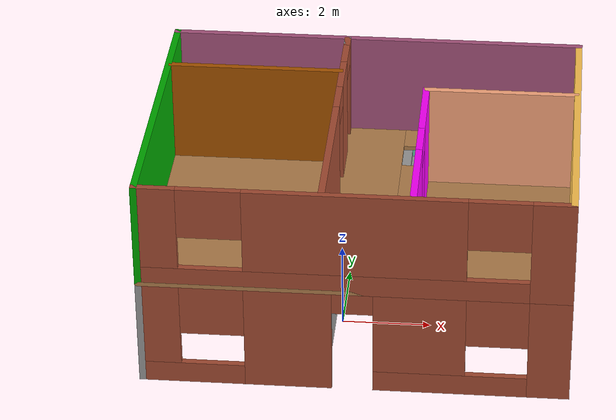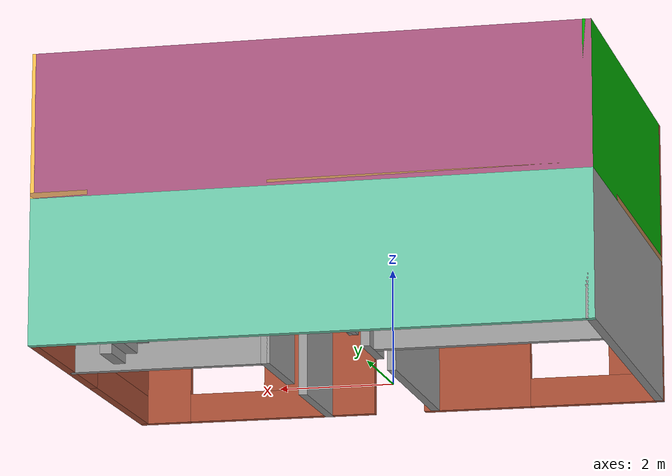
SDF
<?xml version='1.0'?>
<sdf version='1.7'>
  <model name='flat_model2'>
    <pose>0.451757 0.919793 0 0 -0 0</pose>
    <link name='Floor_0'>
      <pose>-0 0 2.5 0 -0 0</pose>
      <visual name='Floor_0_Visual_0'>
        <pose>-2.02969 0 0.05 0 -0 0</pose>
        <geometry>
          <box>
            <size>5.44063 7 0.1</size>
          </box>
        </geometry>
        <material>
          <script>
            <uri>file://media/materials/scripts/gazebo.material</uri>
            <name>Gazebo/Wood</name>
          </script>
          <ambient>1 1 1 1</ambient>
        </material>
        <meta>
          <layer>1</layer>
        </meta>
      </visual>
      <collision name='Floor_0_Collision_0'>
        <geometry>
          <box>
            <size>5.44063 7 0.1</size>
          </box>
        </geometry>
        <pose>-2.02969 0 0.05 0 -0 0</pose>
      </collision>
      <visual name='Floor_0_Visual_1'>
        <pose>2.72031 -0.867123 0.05 0 -0 0</pose>
        <geometry>
          <box>
            <size>4.05937 5.26575 0.1</size>
          </box>
        </geometry>
        <material>
          <script>
            <uri>file://media/materials/scripts/gazebo.material</uri>
            <name>Gazebo/Wood</name>
          </script>
          <ambient>1 1 1 1</ambient>
        </material>
        <meta>
          <layer>1</layer>
        </meta>
      </visual>
      <collision name='Floor_0_Collision_1'>
        <geometry>
          <box>
            <size>4.05937 5.26575 0.1</size>
          </box>
        </geometry>
        <pose>2.72031 -0.867123 0.05 0 -0 0</pose>
      </collision>
      <visual name='Floor_0_Visual_2'>
        <pose>4.25859 2.63288 0.05 0 -0 0</pose>
        <geometry>
          <box>
            <size>0.982812 1.73425 0.1</size>
          </box>
        </geometry>
        <material>
          <script>
            <uri>file://media/materials/scripts/gazebo.material</uri>
            <name>Gazebo/Wood</name>
          </script>
          <ambient>1 1 1 1</ambient>
        </material>
        <meta>
          <layer>1</layer>
        </meta>
      </visual>
      <collision name='Floor_0_Collision_2'>
        <geometry>
          <box>
            <size>0.982812 1.73425 0.1</size>
          </box>
        </geometry>
        <pose>4.25859 2.63288 0.05 0 -0 0</pose>
      </collision>
      <visual name='Floor_0_Visual_3'>
        <pose>2.22891 3.05726 0.05 0 -0 0</pose>
        <geometry>
          <box>
            <size>3.07656 0.885475 0.1</size>
          </box>
        </geometry>
        <material>
          <script>
            <uri>file://media/materials/scripts/gazebo.material</uri>
            <name>Gazebo/Wood</name>
          </script>
          <ambient>1 1 1 1</ambient>
        </material>
        <meta>
          <layer>1</layer>
        </meta>
      </visual>
      <collision name='Floor_0_Collision_3'>
        <geometry>
          <box>
            <size>3.07656 0.885475 0.1</size>
          </box>
        </geometry>
        <pose>2.22891 3.05726 0.05 0 -0 0</pose>
      </collision>
    </link>
    <link name='Stairs_0'>
      <visual name='Stairs_0_Visual_0'>
        <pose>3.66464 2.19014 0.083333 0 -0 -1.5708</pose>
        <geometry>
          <box>
            <size>0.848771 0.205104 0.166667</size>
          </box>
        </geometry>
        <material>
          <script>
            <uri>file://media/materials/scripts/gazebo.material</uri>
            <name>Gazebo/Grey</name>
          </script>
          <ambient>1 1 1 1</ambient>
        </material>
        <meta>
          <layer>0</layer>
        </meta>
      </visual>
      <collision name='Stairs_0_Collision_0'>
        <geometry>
          <box>
            <size>0.848771 0.205104 0.166667</size>
          </box>
        </geometry>
        <pose>3.66464 2.19014 0.083333 0 -0 -1.5708</pose>
      </collision>
      <visual name='Stairs_0_Visual_1'>
        <pose>3.45953 2.19014 0.25 0 -0 -1.5708</pose>
        <geometry>
          <box>
            <size>0.848771 0.205104 0.166667</size>
          </box>
        </geometry>
        <material>
          <script>
            <uri>file://media/materials/scripts/gazebo.material</uri>
            <name>Gazebo/Grey</name>
          </script>
          <ambient>1 1 1 1</ambient>
        </material>
        <meta>
          <layer>0</layer>
        </meta>
      </visual>
      <collision name='Stairs_0_Collision_1'>
        <geometry>
          <box>
            <size>0.848771 0.205104 0.166667</size>
          </box>
        </geometry>
        <pose>3.45953 2.19014 0.25 0 -0 -1.5708</pose>
      </collision>
      <visual name='Stairs_0_Visual_2'>
        <pose>3.25443 2.19014 0.416667 0 -0 -1.5708</pose>
        <geometry>
          <box>
            <size>0.848771 0.205104 0.166667</size>
          </box>
        </geometry>
        <material>
          <script>
            <uri>file://media/materials/scripts/gazebo.material</uri>
            <name>Gazebo/Grey</name>
          </script>
          <ambient>1 1 1 1</ambient>
        </material>
        <meta>
          <layer>0</layer>
        </meta>
      </visual>
      <collision name='Stairs_0_Collision_2'>
        <geometry>
          <box>
            <size>0.848771 0.205104 0.166667</size>
          </box>
        </geometry>
        <pose>3.25443 2.19014 0.416667 0 -0 -1.5708</pose>
      </collision>
      <visual name='Stairs_0_Visual_3'>
        <pose>3.04932 2.19014 0.583333 0 -0 -1.5708</pose>
        <geometry>
          <box>
            <size>0.848771 0.205104 0.166667</size>
          </box>
        </geometry>
        <material>
          <script>
            <uri>file://media/materials/scripts/gazebo.material</uri>
            <name>Gazebo/Grey</name>
          </script>
          <ambient>1 1 1 1</ambient>
        </material>
        <meta>
          <layer>0</layer>
        </meta>
      </visual>
      <collision name='Stairs_0_Collision_3'>
        <geometry>
          <box>
            <size>0.848771 0.205104 0.166667</size>
          </box>
        </geometry>
        <pose>3.04932 2.19014 0.583333 0 -0 -1.5708</pose>
      </collision>
      <visual name='Stairs_0_Visual_4'>
        <pose>2.84422 2.19014 0.75 0 -0 -1.5708</pose>
        <geometry>
          <box>
            <size>0.848771 0.205104 0.166667</size>
          </box>
        </geometry>
        <material>
          <script>
            <uri>file://media/materials/scripts/gazebo.material</uri>
            <name>Gazebo/Grey</name>
          </script>
          <ambient>1 1 1 1</ambient>
        </material>
        <meta>
          <layer>0</layer>
        </meta>
      </visual>
      <collision name='Stairs_0_Collision_4'>
        <geometry>
          <box>
            <size>0.848771 0.205104 0.166667</size>
          </box>
        </geometry>
        <pose>2.84422 2.19014 0.75 0 -0 -1.5708</pose>
      </collision>
      <visual name='Stairs_0_Visual_5'>
        <pose>2.63912 2.19014 0.916667 0 -0 -1.5708</pose>
        <geometry>
          <box>
            <size>0.848771 0.205104 0.166667</size>
          </box>
        </geometry>
        <material>
          <script>
            <uri>file://media/materials/scripts/gazebo.material</uri>
            <name>Gazebo/Grey</name>
          </script>
          <ambient>1 1 1 1</ambient>
        </material>
        <meta>
          <layer>0</layer>
        </meta>
      </visual>
      <collision name='Stairs_0_Collision_5'>
        <geometry>
          <box>
            <size>0.848771 0.205104 0.166667</size>
          </box>
        </geometry>
        <pose>2.63912 2.19014 0.916667 0 -0 -1.5708</pose>
      </collision>
      <visual name='Stairs_0_Visual_6'>
        <pose>2.43401 2.19014 1.08333 0 -0 -1.5708</pose>
        <geometry>
          <box>
            <size>0.848771 0.205104 0.166667</size>
          </box>
        </geometry>
        <material>
          <script>
            <uri>file://media/materials/scripts/gazebo.material</uri>
            <name>Gazebo/Grey</name>
          </script>
          <ambient>1 1 1 1</ambient>
        </material>
        <meta>
          <layer>0</layer>
        </meta>
      </visual>
      <collision name='Stairs_0_Collision_6'>
        <geometry>
          <box>
            <size>0.848771 0.205104 0.166667</size>
          </box>
        </geometry>
        <pose>2.43401 2.19014 1.08333 0 -0 -1.5708</pose>
      </collision>
      <visual name='Stairs_0_Visual_7'>
        <pose>2.22891 2.19014 1.25 0 -0 -1.5708</pose>
        <geometry>
          <box>
            <size>0.848771 0.205104 0.166667</size>
          </box>
        </geometry>
        <material>
          <script>
            <uri>file://media/materials/scripts/gazebo.material</uri>
            <name>Gazebo/Grey</name>
          </script>
          <ambient>1 1 1 1</ambient>
        </material>
        <meta>
          <layer>0</layer>
        </meta>
      </visual>
      <collision name='Stairs_0_Collision_7'>
        <geometry>
          <box>
            <size>0.848771 0.205104 0.166667</size>
          </box>
        </geometry>
        <pose>2.22891 2.19014 1.25 0 -0 -1.5708</pose>
      </collision>
      <visual name='Stairs_0_Visual_8'>
        <pose>2.0238 2.19014 1.41667 0 -0 -1.5708</pose>
        <geometry>
          <box>
            <size>0.848771 0.205104 0.166667</size>
          </box>
        </geometry>
        <material>
          <script>
            <uri>file://media/materials/scripts/gazebo.material</uri>
            <name>Gazebo/Grey</name>
          </script>
          <ambient>1 1 1 1</ambient>
        </material>
        <meta>
          <layer>0</layer>
        </meta>
      </visual>
      <collision name='Stairs_0_Collision_8'>
        <geometry>
          <box>
            <size>0.848771 0.205104 0.166667</size>
          </box>
        </geometry>
        <pose>2.0238 2.19014 1.41667 0 -0 -1.5708</pose>
      </collision>
      <visual name='Stairs_0_Visual_9'>
        <pose>1.8187 2.19014 1.58333 0 -0 -1.5708</pose>
        <geometry>
          <box>
            <size>0.848771 0.205104 0.166667</size>
          </box>
        </geometry>
        <material>
          <script>
            <uri>file://media/materials/scripts/gazebo.material</uri>
            <name>Gazebo/Grey</name>
          </script>
          <ambient>1 1 1 1</ambient>
        </material>
        <meta>
          <layer>0</layer>
        </meta>
      </visual>
      <collision name='Stairs_0_Collision_9'>
        <geometry>
          <box>
            <size>0.848771 0.205104 0.166667</size>
          </box>
        </geometry>
        <pose>1.8187 2.19014 1.58333 0 -0 -1.5708</pose>
      </collision>
      <visual name='Stairs_0_Visual_10'>
        <pose>1.6136 2.19014 1.75 0 -0 -1.5708</pose>
        <geometry>
          <box>
            <size>0.848771 0.205104 0.166667</size>
          </box>
        </geometry>
        <material>
          <script>
            <uri>file://media/materials/scripts/gazebo.material</uri>
            <name>Gazebo/Grey</name>
          </script>
          <ambient>1 1 1 1</ambient>
        </material>
        <meta>
          <layer>0</layer>
        </meta>
      </visual>
      <collision name='Stairs_0_Collision_10'>
        <geometry>
          <box>
            <size>0.848771 0.205104 0.166667</size>
          </box>
        </geometry>
        <pose>1.6136 2.19014 1.75 0 -0 -1.5708</pose>
      </collision>
      <visual name='Stairs_0_Visual_11'>
        <pose>1.40849 2.19014 1.91667 0 -0 -1.5708</pose>
        <geometry>
          <box>
            <size>0.848771 0.205104 0.166667</size>
          </box>
        </geometry>
        <material>
          <script>
            <uri>file://media/materials/scripts/gazebo.material</uri>
            <name>Gazebo/Grey</name>
          </script>
          <ambient>1 1 1 1</ambient>
        </material>
        <meta>
          <layer>0</layer>
        </meta>
      </visual>
      <collision name='Stairs_0_Collision_11'>
        <geometry>
          <box>
            <size>0.848771 0.205104 0.166667</size>
          </box>
        </geometry>
        <pose>1.40849 2.19014 1.91667 0 -0 -1.5708</pose>
      </collision>
      <visual name='Stairs_0_Visual_12'>
        <pose>1.20339 2.19014 2.08333 0 -0 -1.5708</pose>
        <geometry>
          <box>
            <size>0.848771 0.205104 0.166667</size>
          </box>
        </geometry>
        <material>
          <script>
            <uri>file://media/materials/scripts/gazebo.material</uri>
            <name>Gazebo/Grey</name>
          </script>
          <ambient>1 1 1 1</ambient>
        </material>
        <meta>
          <layer>0</layer>
        </meta>
      </visual>
      <collision name='Stairs_0_Collision_12'>
        <geometry>
          <box>
            <size>0.848771 0.205104 0.166667</size>
          </box>
        </geometry>
        <pose>1.20339 2.19014 2.08333 0 -0 -1.5708</pose>
      </collision>
      <visual name='Stairs_0_Visual_13'>
        <pose>0.998284 2.19014 2.25 0 -0 -1.5708</pose>
        <geometry>
          <box>
            <size>0.848771 0.205104 0.166667</size>
          </box>
        </geometry>
        <material>
          <script>
            <uri>file://media/materials/scripts/gazebo.material</uri>
            <name>Gazebo/Grey</name>
          </script>
          <ambient>1 1 1 1</ambient>
        </material>
        <meta>
          <layer>0</layer>
        </meta>
      </visual>
      <collision name='Stairs_0_Collision_13'>
        <geometry>
          <box>
            <size>0.848771 0.205104 0.166667</size>
          </box>
        </geometry>
        <pose>0.998284 2.19014 2.25 0 -0 -1.5708</pose>
      </collision>
      <visual name='Stairs_0_Visual_14'>
        <pose>0.79318 2.19014 2.41667 0 -0 -1.5708</pose>
        <geometry>
          <box>
            <size>0.848771 0.205104 0.166667</size>
          </box>
        </geometry>
        <material>
          <script>
            <uri>file://media/materials/scripts/gazebo.material</uri>
            <name>Gazebo/Grey</name>
          </script>
          <ambient>1 1 1 1</ambient>
        </material>
        <meta>
          <layer>0</layer>
        </meta>
      </visual>
      <collision name='Stairs_0_Collision_14'>
        <geometry>
          <box>
            <size>0.848771 0.205104 0.166667</size>
          </box>
        </geometry>
        <pose>0.79318 2.19014 2.41667 0 -0 -1.5708</pose>
      </collision>
    </link>
    <link name='Wall_0'>
      <collision name='Wall_0_Collision'>
        <geometry>
          <box>
            <size>9.5 0.15 2.5</size>
          </box>
        </geometry>
        <pose>0 0 1.25 0 -0 0</pose>
      </collision>
      <visual name='Wall_0_Visual'>
        <pose>0 0 1.25 0 -0 0</pose>
        <geometry>
          <box>
            <size>9.5 0.15 2.5</size>
          </box>
        </geometry>
        <material>
          <script>
            <uri>file://media/materials/scripts/gazebo.material</uri>
            <name>Gazebo/Grey</name>
          </script>
          <ambient>0.435294 0.796078 0.67451 1</ambient>
        </material>
        <meta>
          <layer>0</layer>
        </meta>
      </visual>
      <pose>-0 3.425 0 0 -0 0</pose>
    </link>
    <link name='Wall_1'>
      <pose>4.675 0 0 0 -0 -1.5708</pose>
      <visual name='Wall_1_Visual_0'>
        <pose>-1.69913 0 1.25 0 -0 0</pose>
        <geometry>
          <box>
            <size>3.60173 0.15 2.5</size>
          </box>
        </geometry>
        <material>
          <script>
            <uri>file://media/materials/scripts/gazebo.material</uri>
            <name>Gazebo/Bricks</name>
          </script>
          <ambient>0.996078 0.47451 0.0196078 1</ambient>
        </material>
        <meta>
          <layer>0</layer>
        </meta>
      </visual>
      <collision name='Wall_1_Collision_0'>
        <geometry>
          <box>
            <size>3.60173 0.15 2.5</size>
          </box>
        </geometry>
        <pose>-1.69913 0 1.25 0 -0 0</pose>
      </collision>
      <visual name='Wall_1_Visual_1'>
        <pose>1.80087 0 0.25 0 -0 0</pose>
        <geometry>
          <box>
            <size>3.39827 0.15 0.5</size>
          </box>
        </geometry>
        <material>
          <script>
            <uri>file://media/materials/scripts/gazebo.material</uri>
            <name>Gazebo/Bricks</name>
          </script>
          <ambient>0.996078 0.47451 0.0196078 1</ambient>
        </material>
        <meta>
          <layer>0</layer>
        </meta>
      </visual>
      <collision name='Wall_1_Collision_1'>
        <geometry>
          <box>
            <size>3.39827 0.15 0.5</size>
          </box>
        </geometry>
        <pose>1.80087 0 0.25 0 -0 0</pose>
      </collision>
      <visual name='Wall_1_Visual_2'>
        <pose>2.2916 0 1.5 0 -0 0</pose>
        <geometry>
          <box>
            <size>2.41679 0.15 2</size>
          </box>
        </geometry>
        <material>
          <script>
            <uri>file://media/materials/scripts/gazebo.material</uri>
            <name>Gazebo/Bricks</name>
          </script>
          <ambient>0.996078 0.47451 0.0196078 1</ambient>
        </material>
        <meta>
          <layer>0</layer>
        </meta>
      </visual>
      <collision name='Wall_1_Collision_2'>
        <geometry>
          <box>
            <size>2.41679 0.15 2</size>
          </box>
        </geometry>
        <pose>2.2916 0 1.5 0 -0 0</pose>
      </collision>
      <visual name='Wall_1_Visual_3'>
        <pose>0.592469 0 1.9 0 -0 0</pose>
        <geometry>
          <box>
            <size>0.981474 0.15 1.2</size>
          </box>
        </geometry>
        <material>
          <script>
            <uri>file://media/materials/scripts/gazebo.material</uri>
            <name>Gazebo/Bricks</name>
          </script>
          <ambient>0.996078 0.47451 0.0196078 1</ambient>
        </material>
        <meta>
          <layer>0</layer>
        </meta>
      </visual>
      <collision name='Wall_1_Collision_3'>
        <geometry>
          <box>
            <size>0.981474 0.15 1.2</size>
          </box>
        </geometry>
        <pose>0.592469 0 1.9 0 -0 0</pose>
      </collision>
    </link>
    <link name='Wall_11'>
      <pose>1.27361 -1.12339 0 0 -0 1.5708</pose>
      <visual name='Wall_11_Visual_0'>
        <pose>-1.34364 0 1.25 0 -0 0</pose>
        <geometry>
          <box>
            <size>2.06272 0.15 2.5</size>
          </box>
        </geometry>
        <material>
          <script>
            <uri>file://media/materials/scripts/gazebo.material</uri>
            <name>Gazebo/Grey</name>
          </script>
          <ambient>1 1 1 1</ambient>
        </material>
        <meta>
          <layer>0</layer>
        </meta>
      </visual>
      <collision name='Wall_11_Collision_0'>
        <geometry>
          <box>
            <size>2.06272 0.15 2.5</size>
          </box>
        </geometry>
        <pose>-1.34364 0 1.25 0 -0 0</pose>
      </collision>
      <visual name='Wall_11_Visual_1'>
        <pose>1.48136 0 1.25 0 -0 0</pose>
        <geometry>
          <box>
            <size>1.78727 0.15 2.5</size>
          </box>
        </geometry>
        <material>
          <script>
            <uri>file://media/materials/scripts/gazebo.material</uri>
            <name>Gazebo/Grey</name>
          </script>
          <ambient>1 1 1 1</ambient>
        </material>
        <meta>
          <layer>0</layer>
        </meta>
      </visual>
      <collision name='Wall_11_Collision_1'>
        <geometry>
          <box>
            <size>1.78727 0.15 2.5</size>
          </box>
        </geometry>
        <pose>1.48136 0 1.25 0 -0 0</pose>
      </collision>
      <visual name='Wall_11_Visual_2'>
        <pose>0.137725 0 2.25 0 -0 0</pose>
        <geometry>
          <box>
            <size>0.9 0.15 0.5</size>
          </box>
        </geometry>
        <material>
          <script>
            <uri>file://media/materials/scripts/gazebo.material</uri>
            <name>Gazebo/Grey</name>
          </script>
          <ambient>1 1 1 1</ambient>
        </material>
        <meta>
          <layer>0</layer>
        </meta>
      </visual>
      <collision name='Wall_11_Collision_2'>
        <geometry>
          <box>
            <size>0.9 0.15 0.5</size>
          </box>
        </geometry>
        <pose>0.137725 0 2.25 0 -0 0</pose>
      </collision>
    </link>
    <link name='Wall_12'>
      <collision name='Wall_12_Collision'>
        <geometry>
          <box>
            <size>3.5 0.15 2.5</size>
          </box>
        </geometry>
        <pose>0 0 1.25 0 -0 0</pose>
      </collision>
      <visual name='Wall_12_Visual'>
        <pose>0 0 1.25 0 -0 0</pose>
        <geometry>
          <box>
            <size>3.5 0.15 2.5</size>
          </box>
        </geometry>
        <material>
          <script>
            <uri>file://media/materials/scripts/gazebo.material</uri>
            <name>Gazebo/Grey</name>
          </script>
          <ambient>1 1 1 1</ambient>
        </material>
        <meta>
          <layer>0</layer>
        </meta>
      </visual>
      <pose>2.94861 1.17661 0 0 -0 0</pose>
    </link>
    <link name='Wall_14'>
      <collision name='Wall_14_Collision'>
        <geometry>
          <box>
            <size>9.5 0.15 2.5</size>
          </box>
        </geometry>
        <pose>0 0 1.25 0 -0 0</pose>
      </collision>
      <visual name='Wall_14_Visual'>
        <pose>0 0 1.25 0 -0 0</pose>
        <geometry>
          <box>
            <size>9.5 0.15 2.5</size>
          </box>
        </geometry>
        <material>
          <script>
            <uri>file://media/materials/scripts/gazebo.material</uri>
            <name>Gazebo/Grey</name>
          </script>
          <ambient>0.666667 0.333333 0.498039 1</ambient>
        </material>
        <meta>
          <layer>1</layer>
        </meta>
      </visual>
      <pose>-0 3.425 2.5 0 -0 0</pose>
    </link>
    <link name='Wall_15'>
      <collision name='Wall_15_Collision'>
        <geometry>
          <box>
            <size>7 0.15 2.5</size>
          </box>
        </geometry>
        <pose>0 0 1.25 0 -0 0</pose>
      </collision>
      <visual name='Wall_15_Visual'>
        <pose>0 0 1.25 0 -0 0</pose>
        <geometry>
          <box>
            <size>7 0.15 2.5</size>
          </box>
        </geometry>
        <material>
          <script>
            <uri>file://media/materials/scripts/gazebo.material</uri>
            <name>Gazebo/Grey</name>
          </script>
          <ambient>1 0.764706 0.305882 1</ambient>
        </material>
        <meta>
          <layer>1</layer>
        </meta>
      </visual>
      <pose>4.675 0 2.5 0 -0 -1.5708</pose>
    </link>
    <link name='Wall_16'>
      <pose>-0 -3.425 2.5 0 -0 3.14159</pose>
      <visual name='Wall_16_Visual_0'>
        <pose>-4.27705 0 1.25 0 -0 0</pose>
        <geometry>
          <box>
            <size>0.945893 0.15 2.5</size>
          </box>
        </geometry>
        <material>
          <script>
            <uri>file://media/materials/scripts/gazebo.material</uri>
            <name>Gazebo/Bricks</name>
          </script>
          <ambient>0.666667 0 0 1</ambient>
        </material>
        <meta>
          <layer>1</layer>
        </meta>
      </visual>
      <collision name='Wall_16_Collision_0'>
        <geometry>
          <box>
            <size>0.945893 0.15 2.5</size>
          </box>
        </geometry>
        <pose>-4.27705 0 1.25 0 -0 0</pose>
      </collision>
      <visual name='Wall_16_Visual_1'>
        <pose>0.472946 0 0.25 0 -0 0</pose>
        <geometry>
          <box>
            <size>8.55411 0.15 0.5</size>
          </box>
        </geometry>
        <material>
          <script>
            <uri>file://media/materials/scripts/gazebo.material</uri>
            <name>Gazebo/Bricks</name>
          </script>
          <ambient>0.666667 0 0 1</ambient>
        </material>
        <meta>
          <layer>1</layer>
        </meta>
      </visual>
      <collision name='Wall_16_Collision_1'>
        <geometry>
          <box>
            <size>8.55411 0.15 0.5</size>
          </box>
        </geometry>
        <pose>0.472946 0 0.25 0 -0 0</pose>
      </collision>
      <visual name='Wall_16_Visual_2'>
        <pose>-0.02934 0 1.5 0 -0 0</pose>
        <geometry>
          <box>
            <size>4.8289 0.15 2</size>
          </box>
        </geometry>
        <material>
          <script>
            <uri>file://media/materials/scripts/gazebo.material</uri>
            <name>Gazebo/Bricks</name>
          </script>
          <ambient>0.666667 0 0 1</ambient>
        </material>
        <meta>
          <layer>1</layer>
        </meta>
      </visual>
      <collision name='Wall_16_Collision_2'>
        <geometry>
          <box>
            <size>4.8289 0.15 2</size>
          </box>
        </geometry>
        <pose>-0.02934 0 1.5 0 -0 0</pose>
      </collision>
      <visual name='Wall_16_Visual_3'>
        <pose>4.27058 0 1.5 0 -0 0</pose>
        <geometry>
          <box>
            <size>0.958832 0.15 2</size>
          </box>
        </geometry>
        <material>
          <script>
            <uri>file://media/materials/scripts/gazebo.material</uri>
            <name>Gazebo/Bricks</name>
          </script>
          <ambient>0.666667 0 0 1</ambient>
        </material>
        <meta>
          <layer>1</layer>
        </meta>
      </visual>
      <collision name='Wall_16_Collision_3'>
        <geometry>
          <box>
            <size>0.958832 0.15 2</size>
          </box>
        </geometry>
        <pose>4.27058 0 1.5 0 -0 0</pose>
      </collision>
      <visual name='Wall_16_Visual_4'>
        <pose>-3.12395 0 1.9 0 -0 0</pose>
        <geometry>
          <box>
            <size>1.36032 0.15 1.2</size>
          </box>
        </geometry>
        <material>
          <script>
            <uri>file://media/materials/scripts/gazebo.material</uri>
            <name>Gazebo/Bricks</name>
          </script>
          <ambient>0.666667 0 0 1</ambient>
        </material>
        <meta>
          <layer>1</layer>
        </meta>
      </visual>
      <collision name='Wall_16_Collision_4'>
        <geometry>
          <box>
            <size>1.36032 0.15 1.2</size>
          </box>
        </geometry>
        <pose>-3.12395 0 1.9 0 -0 0</pose>
      </collision>
      <visual name='Wall_16_Visual_5'>
        <pose>3.08814 0 1.9 0 -0 0</pose>
        <geometry>
          <box>
            <size>1.40606 0.15 1.2</size>
          </box>
        </geometry>
        <material>
          <script>
            <uri>file://media/materials/scripts/gazebo.material</uri>
            <name>Gazebo/Bricks</name>
          </script>
          <ambient>0.666667 0 0 1</ambient>
        </material>
        <meta>
          <layer>1</layer>
        </meta>
      </visual>
      <collision name='Wall_16_Collision_5'>
        <geometry>
          <box>
            <size>1.40606 0.15 1.2</size>
          </box>
        </geometry>
        <pose>3.08814 0 1.9 0 -0 0</pose>
      </collision>
    </link>
    <link name='Wall_17'>
      <collision name='Wall_17_Collision'>
        <geometry>
          <box>
            <size>7 0.15 2.5</size>
          </box>
        </geometry>
        <pose>0 0 1.25 0 -0 0</pose>
      </collision>
      <visual name='Wall_17_Visual'>
        <pose>0 0 1.25 0 -0 0</pose>
        <geometry>
          <box>
            <size>7 0.15 2.5</size>
          </box>
        </geometry>
        <material>
          <script>
            <uri>file://media/materials/scripts/gazebo.material</uri>
            <name>Gazebo/Grey</name>
          </script>
          <ambient>0 0.666667 0 1</ambient>
        </material>
        <meta>
          <layer>1</layer>
        </meta>
      </visual>
      <pose>-4.675 0 2.5 0 -0 1.5708</pose>
    </link>
    <link name='Wall_18'>
      <collision name='Wall_18_Collision'>
        <geometry>
          <box>
            <size>4 0.15 2.5</size>
          </box>
        </geometry>
        <pose>0 0 1.25 0 -0 0</pose>
      </collision>
      <visual name='Wall_18_Visual'>
        <pose>0 0 1.25 0 -0 0</pose>
        <geometry>
          <box>
            <size>4 0.15 2.5</size>
          </box>
        </geometry>
        <material>
          <script>
            <uri>file://media/materials/scripts/gazebo.material</uri>
            <name>Gazebo/Grey</name>
          </script>
          <ambient>0.666667 0.333333 0 1</ambient>
        </material>
        <meta>
          <layer>1</layer>
        </meta>
      </visual>
      <pose>-2.666 1.8646 2.5 0 -0 0</pose>
    </link>
    <link name='Wall_19'>
      <collision name='Wall_19_Collision'>
        <geometry>
          <box>
            <size>0.322118 0.15 2.5</size>
          </box>
        </geometry>
        <pose>0 0 1.25 0 -0 0</pose>
      </collision>
      <visual name='Wall_19_Visual'>
        <pose>0 0 1.25 0 -0 0</pose>
        <geometry>
          <box>
            <size>0.322118 0.15 2.5</size>
          </box>
        </geometry>
        <material>
          <script>
            <uri>file://media/materials/scripts/gazebo.material</uri>
            <name>Gazebo/Grey</name>
          </script>
          <ambient>1 1 1 1</ambient>
        </material>
        <meta>
          <layer>1</layer>
        </meta>
      </visual>
      <pose>-0.685529 3.28498 2.5 0 -0 1.57008</pose>
    </link>
    <link name='Wall_2'>
      <pose>-0 -3.425 0 0 -0 3.14159</pose>
      <visual name='Wall_2_Visual_0'>
        <pose>-4.27925 0 1.25 0 -0 0</pose>
        <geometry>
          <box>
            <size>0.941507 0.15 2.5</size>
          </box>
        </geometry>
        <material>
          <script>
            <uri>file://media/materials/scripts/gazebo.material</uri>
            <name>Gazebo/Bricks</name>
          </script>
          <ambient>0.333333 0 0.498039 1</ambient>
        </material>
        <meta>
          <layer>0</layer>
        </meta>
      </visual>
      <collision name='Wall_2_Collision_0'>
        <geometry>
          <box>
            <size>0.941507 0.15 2.5</size>
          </box>
        </geometry>
        <pose>-4.27925 0 1.25 0 -0 0</pose>
      </collision>
      <visual name='Wall_2_Visual_1'>
        <pose>1.43314 0 1.25 0 -0 0</pose>
        <geometry>
          <box>
            <size>1.91749 0.15 2.5</size>
          </box>
        </geometry>
        <material>
          <script>
            <uri>file://media/materials/scripts/gazebo.material</uri>
            <name>Gazebo/Bricks</name>
          </script>
          <ambient>0.333333 0 0.498039 1</ambient>
        </material>
        <meta>
          <layer>0</layer>
        </meta>
      </visual>
      <collision name='Wall_2_Collision_1'>
        <geometry>
          <box>
            <size>1.91749 0.15 2.5</size>
          </box>
        </geometry>
        <pose>1.43314 0 1.25 0 -0 0</pose>
      </collision>
      <visual name='Wall_2_Visual_2'>
        <pose>-2.11705 0 0.25 0 -0 0</pose>
        <geometry>
          <box>
            <size>3.38289 0.15 0.5</size>
          </box>
        </geometry>
        <material>
          <script>
            <uri>file://media/materials/scripts/gazebo.material</uri>
            <name>Gazebo/Bricks</name>
          </script>
          <ambient>0.333333 0 0.498039 1</ambient>
        </material>
        <meta>
          <layer>0</layer>
        </meta>
      </visual>
      <collision name='Wall_2_Collision_2'>
        <geometry>
          <box>
            <size>3.38289 0.15 0.5</size>
          </box>
        </geometry>
        <pose>-2.11705 0 0.25 0 -0 0</pose>
      </collision>
      <visual name='Wall_2_Visual_3'>
        <pose>3.57094 0 0.25 0 -0 0</pose>
        <geometry>
          <box>
            <size>2.35812 0.15 0.5</size>
          </box>
        </geometry>
        <material>
          <script>
            <uri>file://media/materials/scripts/gazebo.material</uri>
            <name>Gazebo/Bricks</name>
          </script>
          <ambient>0.333333 0 0.498039 1</ambient>
        </material>
        <meta>
          <layer>0</layer>
        </meta>
      </visual>
      <collision name='Wall_2_Collision_3'>
        <geometry>
          <box>
            <size>2.35812 0.15 0.5</size>
          </box>
        </geometry>
        <pose>3.57094 0 0.25 0 -0 0</pose>
      </collision>
      <visual name='Wall_2_Visual_4'>
        <pose>-1.43727 0 1.5 0 -0 0</pose>
        <geometry>
          <box>
            <size>2.02335 0.15 2</size>
          </box>
        </geometry>
        <material>
          <script>
            <uri>file://media/materials/scripts/gazebo.material</uri>
            <name>Gazebo/Bricks</name>
          </script>
          <ambient>0.333333 0 0.498039 1</ambient>
        </material>
        <meta>
          <layer>0</layer>
        </meta>
      </visual>
      <collision name='Wall_2_Collision_4'>
        <geometry>
          <box>
            <size>2.02335 0.15 2</size>
          </box>
        </geometry>
        <pose>-1.43727 0 1.5 0 -0 0</pose>
      </collision>
      <visual name='Wall_2_Visual_5'>
        <pose>-1.43727 0 1.5 0 -0 0</pose>
        <geometry>
          <box>
            <size>2.02335 0.15 2</size>
          </box>
        </geometry>
        <material>
          <script>
            <uri>file://media/materials/scripts/gazebo.material</uri>
            <name>Gazebo/Bricks</name>
          </script>
          <ambient>0.333333 0 0.498039 1</ambient>
        </material>
        <meta>
          <layer>0</layer>
        </meta>
      </visual>
      <collision name='Wall_2_Collision_5'>
        <geometry>
          <box>
            <size>2.02335 0.15 2</size>
          </box>
        </geometry>
        <pose>-1.43727 0 1.5 0 -0 0</pose>
      </collision>
      <visual name='Wall_2_Visual_6'>
        <pose>4.2734 0 1.5 0 -0 0</pose>
        <geometry>
          <box>
            <size>0.9532 0.15 2</size>
          </box>
        </geometry>
        <material>
          <script>
            <uri>file://media/materials/scripts/gazebo.material</uri>
            <name>Gazebo/Bricks</name>
          </script>
          <ambient>0.333333 0 0.498039 1</ambient>
        </material>
        <meta>
          <layer>0</layer>
        </meta>
      </visual>
      <collision name='Wall_2_Collision_6'>
        <geometry>
          <box>
            <size>0.9532 0.15 2</size>
          </box>
        </geometry>
        <pose>4.2734 0 1.5 0 -0 0</pose>
      </collision>
      <visual name='Wall_2_Visual_7'>
        <pose>-3.12872 0 1.9 0 -0 0</pose>
        <geometry>
          <box>
            <size>1.35955 0.15 1.2</size>
          </box>
        </geometry>
        <material>
          <script>
            <uri>file://media/materials/scripts/gazebo.material</uri>
            <name>Gazebo/Bricks</name>
          </script>
          <ambient>0.333333 0 0.498039 1</ambient>
        </material>
        <meta>
          <layer>0</layer>
        </meta>
      </visual>
      <collision name='Wall_2_Collision_7'>
        <geometry>
          <box>
            <size>1.35955 0.15 1.2</size>
          </box>
        </geometry>
        <pose>-3.12872 0 1.9 0 -0 0</pose>
      </collision>
      <visual name='Wall_2_Visual_8'>
        <pose>3.09434 0 1.9 0 -0 0</pose>
        <geometry>
          <box>
            <size>1.40491 0.15 1.2</size>
          </box>
        </geometry>
        <material>
          <script>
            <uri>file://media/materials/scripts/gazebo.material</uri>
            <name>Gazebo/Bricks</name>
          </script>
          <ambient>0.333333 0 0.498039 1</ambient>
        </material>
        <meta>
          <layer>0</layer>
        </meta>
      </visual>
      <collision name='Wall_2_Collision_8'>
        <geometry>
          <box>
            <size>1.40491 0.15 1.2</size>
          </box>
        </geometry>
        <pose>3.09434 0 1.9 0 -0 0</pose>
      </collision>
      <visual name='Wall_2_Visual_9'>
        <pose>0.0244 0 2.25 0 -0 0</pose>
        <geometry>
          <box>
            <size>0.9 0.15 0.5</size>
          </box>
        </geometry>
        <material>
          <script>
            <uri>file://media/materials/scripts/gazebo.material</uri>
            <name>Gazebo/Bricks</name>
          </script>
          <ambient>0.333333 0 0.498039 1</ambient>
        </material>
        <meta>
          <layer>0</layer>
        </meta>
      </visual>
      <collision name='Wall_2_Collision_9'>
        <geometry>
          <box>
            <size>0.9 0.15 0.5</size>
          </box>
        </geometry>
        <pose>0.0244 0 2.25 0 -0 0</pose>
      </collision>
      <visual name='Wall_2_Visual_10'>
        <pose>0.0244 0 2.25 0 -0 0</pose>
        <geometry>
          <box>
            <size>0.9 0.15 0.5</size>
          </box>
        </geometry>
        <material>
          <script>
            <uri>file://media/materials/scripts/gazebo.material</uri>
            <name>Gazebo/Bricks</name>
          </script>
          <ambient>0.333333 0 0.498039 1</ambient>
        </material>
        <meta>
          <layer>0</layer>
        </meta>
      </visual>
      <collision name='Wall_2_Collision_10'>
        <geometry>
          <box>
            <size>0.9 0.15 0.5</size>
          </box>
        </geometry>
        <pose>0.0244 0 2.25 0 -0 0</pose>
      </collision>
    </link>
    <link name='Wall_20'>
      <pose>-0.680529 -0.015019 2.5 0 -0 -1.56934</pose>
      <visual name='Wall_20_Visual_0'>
        <pose>-3.27362 0 1.25 0 -0 0</pose>
        <geometry>
          <box>
            <size>0.374891 0.15 2.5</size>
          </box>
        </geometry>
        <material>
          <script>
            <uri>file://media/materials/scripts/gazebo.material</uri>
            <name>Gazebo/Bricks</name>
          </script>
          <ambient>0.137255 0.321569 0.666667 1</ambient>
        </material>
        <meta>
          <layer>1</layer>
        </meta>
      </visual>
      <collision name='Wall_20_Collision_0'>
        <geometry>
          <box>
            <size>0.374891 0.15 2.5</size>
          </box>
        </geometry>
        <pose>-3.27362 0 1.25 0 -0 0</pose>
      </collision>
      <visual name='Wall_20_Visual_1'>
        <pose>-1.725 0 1.25 0 -0 0</pose>
        <geometry>
          <box>
            <size>1.1342 0.15 2.5</size>
          </box>
        </geometry>
        <material>
          <script>
            <uri>file://media/materials/scripts/gazebo.material</uri>
            <name>Gazebo/Bricks</name>
          </script>
          <ambient>0.137255 0.321569 0.666667 1</ambient>
        </material>
        <meta>
          <layer>1</layer>
        </meta>
      </visual>
      <collision name='Wall_20_Collision_1'>
        <geometry>
          <box>
            <size>1.1342 0.15 2.5</size>
          </box>
        </geometry>
        <pose>-1.725 0 1.25 0 -0 0</pose>
      </collision>
      <visual name='Wall_20_Visual_2'>
        <pose>1.60158 0 1.25 0 -0 0</pose>
        <geometry>
          <box>
            <size>3.71896 0.15 2.5</size>
          </box>
        </geometry>
        <material>
          <script>
            <uri>file://media/materials/scripts/gazebo.material</uri>
            <name>Gazebo/Bricks</name>
          </script>
          <ambient>0.137255 0.321569 0.666667 1</ambient>
        </material>
        <meta>
          <layer>1</layer>
        </meta>
      </visual>
      <collision name='Wall_20_Collision_2'>
        <geometry>
          <box>
            <size>3.71896 0.15 2.5</size>
          </box>
        </geometry>
        <pose>1.60158 0 1.25 0 -0 0</pose>
      </collision>
      <visual name='Wall_20_Visual_3'>
        <pose>-2.68913 0 2.25 0 -0 0</pose>
        <geometry>
          <box>
            <size>0.794074 0.15 0.5</size>
          </box>
        </geometry>
        <material>
          <script>
            <uri>file://media/materials/scripts/gazebo.material</uri>
            <name>Gazebo/Bricks</name>
          </script>
          <ambient>0.137255 0.321569 0.666667 1</ambient>
        </material>
        <meta>
          <layer>1</layer>
        </meta>
      </visual>
      <collision name='Wall_20_Collision_3'>
        <geometry>
          <box>
            <size>0.794074 0.15 0.5</size>
          </box>
        </geometry>
        <pose>-2.68913 0 2.25 0 -0 0</pose>
      </collision>
      <visual name='Wall_20_Visual_4'>
        <pose>-0.707897 0 2.25 0 -0 0</pose>
        <geometry>
          <box>
            <size>0.9 0.15 0.5</size>
          </box>
        </geometry>
        <material>
          <script>
            <uri>file://media/materials/scripts/gazebo.material</uri>
            <name>Gazebo/Bricks</name>
          </script>
          <ambient>0.137255 0.321569 0.666667 1</ambient>
        </material>
        <meta>
          <layer>1</layer>
        </meta>
      </visual>
      <collision name='Wall_20_Collision_4'>
        <geometry>
          <box>
            <size>0.9 0.15 0.5</size>
          </box>
        </geometry>
        <pose>-0.707897 0 2.25 0 -0 0</pose>
      </collision>
    </link>
    <link name='Wall_21'>
      <pose>1.27361 -1.12339 2.5 0 -0 1.5708</pose>
      <visual name='Wall_21_Visual_0'>
        <pose>-1.34447 0 1.25 0 -0 0</pose>
        <geometry>
          <box>
            <size>2.06106 0.15 2.5</size>
          </box>
        </geometry>
        <material>
          <script>
            <uri>file://media/materials/scripts/gazebo.material</uri>
            <name>Gazebo/Grey</name>
          </script>
          <ambient>1 0 1 1</ambient>
        </material>
        <meta>
          <layer>1</layer>
        </meta>
      </visual>
      <collision name='Wall_21_Collision_0'>
        <geometry>
          <box>
            <size>2.06106 0.15 2.5</size>
          </box>
        </geometry>
        <pose>-1.34447 0 1.25 0 -0 0</pose>
      </collision>
      <visual name='Wall_21_Visual_1'>
        <pose>1.48429 0 1.25 0 -0 0</pose>
        <geometry>
          <box>
            <size>1.78142 0.15 2.5</size>
          </box>
        </geometry>
        <material>
          <script>
            <uri>file://media/materials/scripts/gazebo.material</uri>
            <name>Gazebo/Grey</name>
          </script>
          <ambient>1 0 1 1</ambient>
        </material>
        <meta>
          <layer>1</layer>
        </meta>
      </visual>
      <collision name='Wall_21_Collision_1'>
        <geometry>
          <box>
            <size>1.78142 0.15 2.5</size>
          </box>
        </geometry>
        <pose>1.48429 0 1.25 0 -0 0</pose>
      </collision>
      <visual name='Wall_21_Visual_2'>
        <pose>0.139817 0 2.25 0 -0 0</pose>
        <geometry>
          <box>
            <size>0.907519 0.15 0.5</size>
          </box>
        </geometry>
        <material>
          <script>
            <uri>file://media/materials/scripts/gazebo.material</uri>
            <name>Gazebo/Grey</name>
          </script>
          <ambient>1 0 1 1</ambient>
        </material>
        <meta>
          <layer>1</layer>
        </meta>
      </visual>
      <collision name='Wall_21_Collision_2'>
        <geometry>
          <box>
            <size>0.907519 0.15 0.5</size>
          </box>
        </geometry>
        <pose>0.139817 0 2.25 0 -0 0</pose>
      </collision>
    </link>
    <link name='Wall_22'>
      <collision name='Wall_22_Collision'>
        <geometry>
          <box>
            <size>3.5 0.15 2.5</size>
          </box>
        </geometry>
        <pose>0 0 1.25 0 -0 0</pose>
      </collision>
      <visual name='Wall_22_Visual'>
        <pose>0 0 1.25 0 -0 0</pose>
        <geometry>
          <box>
            <size>3.5 0.15 2.5</size>
          </box>
        </geometry>
        <material>
          <script>
            <uri>file://media/materials/scripts/gazebo.material</uri>
            <name>Gazebo/Grey</name>
          </script>
          <ambient>1 0.666667 0.498039 1</ambient>
        </material>
        <meta>
          <layer>1</layer>
        </meta>
      </visual>
      <pose>2.94861 1.17661 2.5 0 -0 0</pose>
    </link>
    <link name='Wall_3'>
      <collision name='Wall_3_Collision'>
        <geometry>
          <box>
            <size>7 0.15 2.5</size>
          </box>
        </geometry>
        <pose>0 0 1.25 0 -0 0</pose>
      </collision>
      <visual name='Wall_3_Visual'>
        <pose>0 0 1.25 0 -0 0</pose>
        <geometry>
          <box>
            <size>7 0.15 2.5</size>
          </box>
        </geometry>
        <material>
          <script>
            <uri>file://media/materials/scripts/gazebo.material</uri>
            <name>Gazebo/Grey</name>
          </script>
          <ambient>1 1 1 1</ambient>
        </material>
        <meta>
          <layer>0</layer>
        </meta>
      </visual>
      <pose>-4.675 0 0 0 -0 1.5708</pose>
    </link>
    <link name='Wall_5'>
      <collision name='Wall_5_Collision'>
        <geometry>
          <box>
            <size>4 0.15 2.5</size>
          </box>
        </geometry>
        <pose>0 0 1.25 0 -0 0</pose>
      </collision>
      <visual name='Wall_5_Visual'>
        <pose>0 0 1.25 0 -0 0</pose>
        <geometry>
          <box>
            <size>4 0.15 2.5</size>
          </box>
        </geometry>
        <material>
          <script>
            <uri>file://media/materials/scripts/gazebo.material</uri>
            <name>Gazebo/Grey</name>
          </script>
          <ambient>1 1 1 1</ambient>
        </material>
        <meta>
          <layer>0</layer>
        </meta>
      </visual>
      <pose>-2.666 1.8646 0 0 -0 0</pose>
    </link>
    <link name='Wall_8'>
      <collision name='Wall_8_Collision'>
        <geometry>
          <box>
            <size>0.322178 0.15 2.5</size>
          </box>
        </geometry>
        <pose>0 0 1.25 0 -0 0</pose>
      </collision>
      <visual name='Wall_8_Visual'>
        <pose>0 0 1.25 0 -0 0</pose>
        <geometry>
          <box>
            <size>0.322178 0.15 2.5</size>
          </box>
        </geometry>
        <material>
          <script>
            <uri>file://media/materials/scripts/gazebo.material</uri>
            <name>Gazebo/Grey</name>
          </script>
          <ambient>1 1 1 1</ambient>
        </material>
        <meta>
          <layer>0</layer>
        </meta>
      </visual>
      <pose>-0.685529 3.28498 0 0 -0 1.57008</pose>
    </link>
    <link name='Wall_9'>
      <pose>-0.680529 -0.015019 0 0 -0 -1.56934</pose>
      <visual name='Wall_9_Visual_0'>
        <pose>-3.28136 0 1.25 0 -0 0</pose>
        <geometry>
          <box>
            <size>0.359419 0.15 2.5</size>
          </box>
        </geometry>
        <material>
          <script>
            <uri>file://media/materials/scripts/gazebo.material</uri>
            <name>Gazebo/Grey</name>
          </script>
          <ambient>1 1 1 1</ambient>
        </material>
        <meta>
          <layer>0</layer>
        </meta>
      </visual>
      <collision name='Wall_9_Collision_0'>
        <geometry>
          <box>
            <size>0.359419 0.15 2.5</size>
          </box>
        </geometry>
        <pose>-3.28136 0 1.25 0 -0 0</pose>
      </collision>
      <visual name='Wall_9_Visual_1'>
        <pose>-1.71755 0 1.25 0 -0 0</pose>
        <geometry>
          <box>
            <size>1.11939 0.15 2.5</size>
          </box>
        </geometry>
        <material>
          <script>
            <uri>file://media/materials/scripts/gazebo.material</uri>
            <name>Gazebo/Grey</name>
          </script>
          <ambient>1 1 1 1</ambient>
        </material>
        <meta>
          <layer>0</layer>
        </meta>
      </visual>
      <collision name='Wall_9_Collision_1'>
        <geometry>
          <box>
            <size>1.11939 0.15 2.5</size>
          </box>
        </geometry>
        <pose>-1.71755 0 1.25 0 -0 0</pose>
      </collision>
      <visual name='Wall_9_Visual_2'>
        <pose>1.60161 0 1.25 0 -0 0</pose>
        <geometry>
          <box>
            <size>3.71892 0.15 2.5</size>
          </box>
        </geometry>
        <material>
          <script>
            <uri>file://media/materials/scripts/gazebo.material</uri>
            <name>Gazebo/Grey</name>
          </script>
          <ambient>1 1 1 1</ambient>
        </material>
        <meta>
          <layer>0</layer>
        </meta>
      </visual>
      <collision name='Wall_9_Collision_2'>
        <geometry>
          <box>
            <size>3.71892 0.15 2.5</size>
          </box>
        </geometry>
        <pose>1.60161 0 1.25 0 -0 0</pose>
      </collision>
      <visual name='Wall_9_Visual_3'>
        <pose>-2.68944 0 2.25 0 -0 0</pose>
        <geometry>
          <box>
            <size>0.824408 0.15 0.5</size>
          </box>
        </geometry>
        <material>
          <script>
            <uri>file://media/materials/scripts/gazebo.material</uri>
            <name>Gazebo/Grey</name>
          </script>
          <ambient>1 1 1 1</ambient>
        </material>
        <meta>
          <layer>0</layer>
        </meta>
      </visual>
      <collision name='Wall_9_Collision_3'>
        <geometry>
          <box>
            <size>0.824408 0.15 0.5</size>
          </box>
        </geometry>
        <pose>-2.68944 0 2.25 0 -0 0</pose>
      </collision>
      <visual name='Wall_9_Visual_4'>
        <pose>-0.707853 0 2.25 0 -0 0</pose>
        <geometry>
          <box>
            <size>0.9 0.15 0.5</size>
          </box>
        </geometry>
        <material>
          <script>
            <uri>file://media/materials/scripts/gazebo.material</uri>
            <name>Gazebo/Grey</name>
          </script>
          <ambient>1 1 1 1</ambient>
        </material>
        <meta>
          <layer>0</layer>
        </meta>
      </visual>
      <collision name='Wall_9_Collision_4'>
        <geometry>
          <box>
            <size>0.9 0.15 0.5</size>
          </box>
        </geometry>
        <pose>-0.707853 0 2.25 0 -0 0</pose>
      </collision>
    </link>
    <static>1</static>
  </model>
</sdf>
